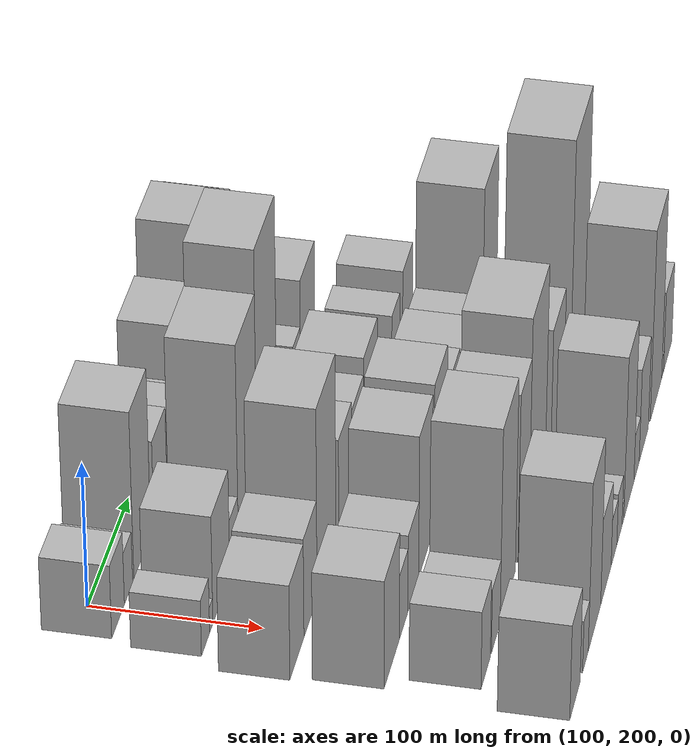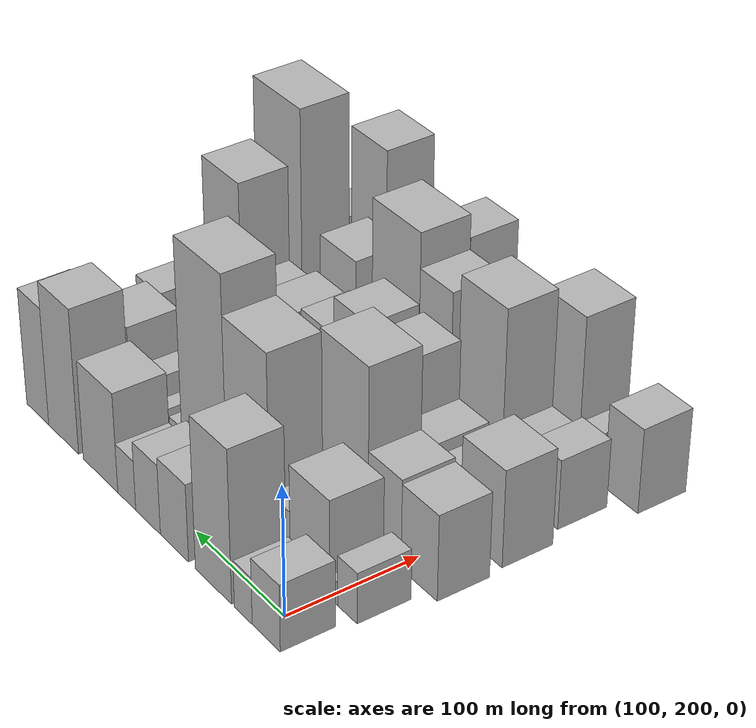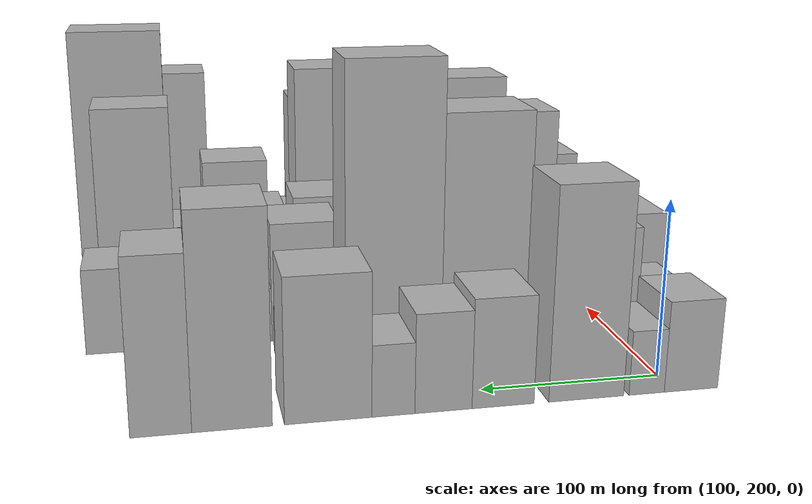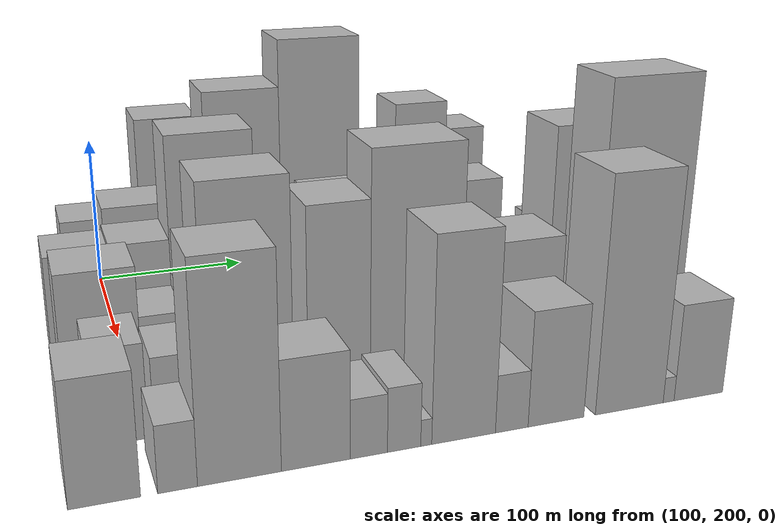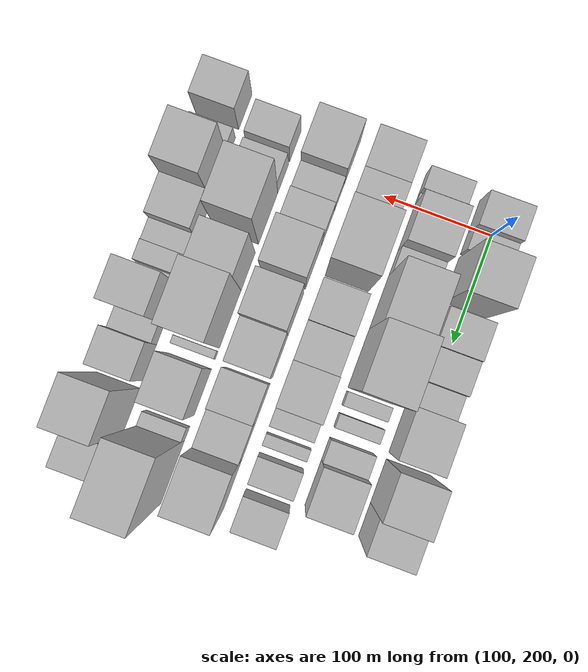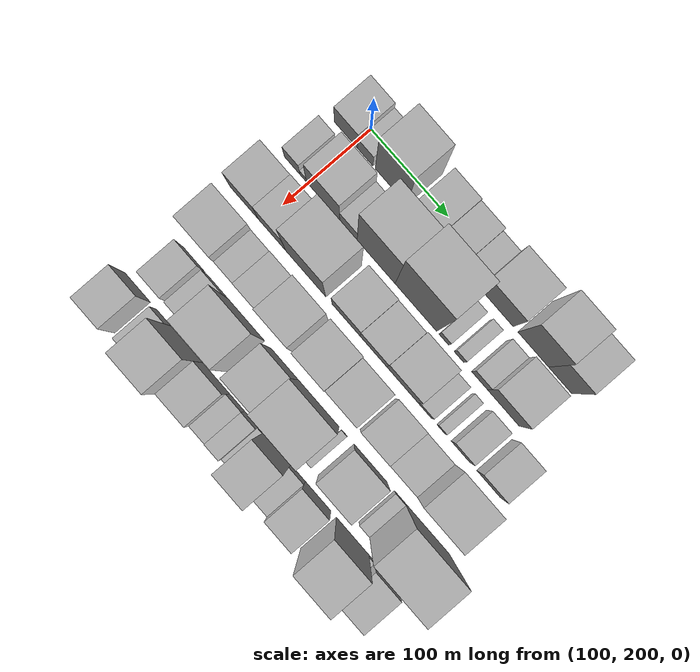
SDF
<sdf version="1.6">
 <world name="default">
  <model name="building_34">
   <static>1</static>
   <pose>100.0000 189.9409 0 0.000000 0.000000 0.000000</pose>
   <link name="link">
    <pose>0 0 25.50 0 0 0</pose>
    <collision name="collision"><geometry><box><size>40.0000 30.4841 51.0000</size></box></geometry></collision>
    <visual name="visual">
     <cast_shadows>0</cast_shadows>
     <geometry><box><size>40.0000 30.4841 51.0000</size></box></geometry>
     <material>
      <script>
       <uri>model://HANNAS_wall/materials/scripts</uri>
       <uri>model://HANNAS_wall/materials/textures</uri>
       <name>vrc/HANNAS_wall</name>
      </script>
     </material>
    </visual>
   </link>
  </model>
  <model name="building_35">
   <static>1</static>
   <pose>100.0000 215.1093 0 0.000000 0.000000 0.000000</pose>
   <link name="link">
    <pose>0 0 18.00 0 0 0</pose>
    <collision name="collision"><geometry><box><size>40.0000 19.8527 36.0000</size></box></geometry></collision>
    <visual name="visual">
     <cast_shadows>0</cast_shadows>
     <geometry><box><size>40.0000 19.8527 36.0000</size></box></geometry>
     <material>
      <script>
       <uri>model://HANNAS_wall/materials/scripts</uri>
       <uri>model://HANNAS_wall/materials/textures</uri>
       <name>vrc/HANNAS_wall</name>
      </script>
     </material>
    </visual>
   </link>
  </model>
  <model name="building_36">
   <static>1</static>
   <pose>100.0000 248.7169 0 0.000000 0.000000 0.000000</pose>
   <link name="link">
    <pose>0 0 58.50 0 0 0</pose>
    <collision name="collision"><geometry><box><size>40.0000 41.3625 117.0000</size></box></geometry></collision>
    <visual name="visual">
     <cast_shadows>0</cast_shadows>
     <geometry><box><size>40.0000 41.3625 117.0000</size></box></geometry>
     <material>
      <script>
       <uri>model://HANNAS_wall/materials/scripts</uri>
       <uri>model://HANNAS_wall/materials/textures</uri>
       <name>vrc/HANNAS_wall</name>
      </script>
     </material>
    </visual>
   </link>
  </model>
  <model name="building_37">
   <static>1</static>
   <pose>100.0000 294.0604 0 0.000000 0.000000 0.000000</pose>
   <link name="link">
    <pose>0 0 30.00 0 0 0</pose>
    <collision name="collision"><geometry><box><size>40.0000 33.3245 60.0000</size></box></geometry></collision>
    <visual name="visual">
     <cast_shadows>0</cast_shadows>
     <geometry><box><size>40.0000 33.3245 60.0000</size></box></geometry>
     <material>
      <script>
       <uri>model://HANNAS_wall/materials/scripts</uri>
       <uri>model://HANNAS_wall/materials/textures</uri>
       <name>vrc/HANNAS_wall</name>
      </script>
     </material>
    </visual>
   </link>
  </model>
  <model name="building_38">
   <static>1</static>
   <pose>100.0000 325.7428 0 0.000000 0.000000 0.000000</pose>
   <link name="link">
    <pose>0 0 27.00 0 0 0</pose>
    <collision name="collision"><geometry><box><size>40.0000 30.0403 54.0000</size></box></geometry></collision>
    <visual name="visual">
     <cast_shadows>0</cast_shadows>
     <geometry><box><size>40.0000 30.0403 54.0000</size></box></geometry>
     <material>
      <script>
       <uri>model://HANNAS_wall/materials/scripts</uri>
       <uri>model://HANNAS_wall/materials/textures</uri>
       <name>vrc/HANNAS_wall</name>
      </script>
     </material>
    </visual>
   </link>
  </model>
  <model name="building_39">
   <static>1</static>
   <pose>100.0000 351.9059 0 0.000000 0.000000 0.000000</pose>
   <link name="link">
    <pose>0 0 19.50 0 0 0</pose>
    <collision name="collision"><geometry><box><size>40.0000 22.2858 39.0000</size></box></geometry></collision>
    <visual name="visual">
     <cast_shadows>0</cast_shadows>
     <geometry><box><size>40.0000 22.2858 39.0000</size></box></geometry>
     <material>
      <script>
       <uri>model://HANNAS_wall/materials/scripts</uri>
       <uri>model://HANNAS_wall/materials/textures</uri>
       <name>vrc/HANNAS_wall</name>
      </script>
     </material>
    </visual>
   </link>
  </model>
  <model name="building_40">
   <static>1</static>
   <pose>100.0000 385.2100 0 0.000000 0.000000 0.000000</pose>
   <link name="link">
    <pose>0 0 39.00 0 0 0</pose>
    <collision name="collision"><geometry><box><size>40.0000 44.3224 78.0000</size></box></geometry></collision>
    <visual name="visual">
     <cast_shadows>0</cast_shadows>
     <geometry><box><size>40.0000 44.3224 78.0000</size></box></geometry>
     <material>
      <script>
       <uri>model://HANNAS_wall/materials/scripts</uri>
       <uri>model://HANNAS_wall/materials/textures</uri>
       <name>vrc/HANNAS_wall</name>
      </script>
     </material>
    </visual>
   </link>
  </model>
  <model name="building_41">
   <static>1</static>
   <pose>100.0000 433.2024 0 0.000000 0.000000 0.000000</pose>
   <link name="link">
    <pose>0 0 57.00 0 0 0</pose>
    <collision name="collision"><geometry><box><size>40.0000 39.6624 114.0000</size></box></geometry></collision>
    <visual name="visual">
     <cast_shadows>0</cast_shadows>
     <geometry><box><size>40.0000 39.6624 114.0000</size></box></geometry>
     <material>
      <script>
       <uri>model://HANNAS_wall/materials/scripts</uri>
       <uri>model://HANNAS_wall/materials/textures</uri>
       <name>vrc/HANNAS_wall</name>
      </script>
     </material>
    </visual>
   </link>
  </model>
  <model name="building_42">
   <static>1</static>
   <pose>100.0000 467.9742 0 0.000000 0.000000 0.000000</pose>
   <link name="link">
    <pose>0 0 46.50 0 0 0</pose>
    <collision name="collision"><geometry><box><size>40.0000 29.8813 93.0000</size></box></geometry></collision>
    <visual name="visual">
     <cast_shadows>0</cast_shadows>
     <geometry><box><size>40.0000 29.8813 93.0000</size></box></geometry>
     <material>
      <script>
       <uri>model://HANNAS_wall/materials/scripts</uri>
       <uri>model://HANNAS_wall/materials/textures</uri>
       <name>vrc/HANNAS_wall</name>
      </script>
     </material>
    </visual>
   </link>
  </model>
  <model name="building_81">
   <static>1</static>
   <pose>152.0000 179.6638 0 0.000000 0.000000 0.000000</pose>
   <link name="link">
    <pose>0 0 19.50 0 0 0</pose>
    <collision name="collision"><geometry><box><size>40.0000 20.5062 39.0000</size></box></geometry></collision>
    <visual name="visual">
     <cast_shadows>0</cast_shadows>
     <geometry><box><size>40.0000 20.5062 39.0000</size></box></geometry>
     <material>
      <script>
       <uri>model://HANNAS_wall/materials/scripts</uri>
       <uri>model://HANNAS_wall/materials/textures</uri>
       <name>vrc/HANNAS_wall</name>
      </script>
     </material>
    </visual>
   </link>
  </model>
  <model name="building_82">
   <static>1</static>
   <pose>152.0000 194.1383 0 0.000000 0.000000 0.000000</pose>
   <link name="link">
    <pose>0 0 9.00 0 0 0</pose>
    <collision name="collision"><geometry><box><size>40.0000 8.4429 18.0000</size></box></geometry></collision>
    <visual name="visual">
     <cast_shadows>0</cast_shadows>
     <geometry><box><size>40.0000 8.4429 18.0000</size></box></geometry>
     <material>
      <script>
       <uri>model://HANNAS_wall/materials/scripts</uri>
       <uri>model://HANNAS_wall/materials/textures</uri>
       <name>vrc/HANNAS_wall</name>
      </script>
     </material>
    </visual>
   </link>
  </model>
  <model name="building_83">
   <static>1</static>
   <pose>152.0000 220.0051 0 0.000000 0.000000 0.000000</pose>
   <link name="link">
    <pose>0 0 37.50 0 0 0</pose>
    <collision name="collision"><geometry><box><size>40.0000 43.2905 75.0000</size></box></geometry></collision>
    <visual name="visual">
     <cast_shadows>0</cast_shadows>
     <geometry><box><size>40.0000 43.2905 75.0000</size></box></geometry>
     <material>
      <script>
       <uri>model://HANNAS_wall/materials/scripts</uri>
       <uri>model://HANNAS_wall/materials/textures</uri>
       <name>vrc/HANNAS_wall</name>
      </script>
     </material>
    </visual>
   </link>
  </model>
  <model name="building_84">
   <static>1</static>
   <pose>152.0000 252.9879 0 0.000000 0.000000 0.000000</pose>
   <link name="link">
    <pose>0 0 19.50 0 0 0</pose>
    <collision name="collision"><geometry><box><size>40.0000 22.6752 39.0000</size></box></geometry></collision>
    <visual name="visual">
     <cast_shadows>0</cast_shadows>
     <geometry><box><size>40.0000 22.6752 39.0000</size></box></geometry>
     <material>
      <script>
       <uri>model://HANNAS_wall/materials/scripts</uri>
       <uri>model://HANNAS_wall/materials/textures</uri>
       <name>vrc/HANNAS_wall</name>
      </script>
     </material>
    </visual>
   </link>
  </model>
  <model name="building_85">
   <static>1</static>
   <pose>152.0000 288.9753 0 0.000000 0.000000 0.000000</pose>
   <link name="link">
    <pose>0 0 72.00 0 0 0</pose>
    <collision name="collision"><geometry><box><size>40.0000 49.2996 144.0000</size></box></geometry></collision>
    <visual name="visual">
     <cast_shadows>0</cast_shadows>
     <geometry><box><size>40.0000 49.2996 144.0000</size></box></geometry>
     <material>
      <script>
       <uri>model://HANNAS_wall/materials/scripts</uri>
       <uri>model://HANNAS_wall/materials/textures</uri>
       <name>vrc/HANNAS_wall</name>
      </script>
     </material>
    </visual>
   </link>
  </model>
  <model name="building_86">
   <static>1</static>
   <pose>152.0000 340.6394 0 0.000000 0.000000 0.000000</pose>
   <link name="link">
    <pose>0 0 87.00 0 0 0</pose>
    <collision name="collision"><geometry><box><size>40.0000 54.0287 174.0000</size></box></geometry></collision>
    <visual name="visual">
     <cast_shadows>0</cast_shadows>
     <geometry><box><size>40.0000 54.0287 174.0000</size></box></geometry>
     <material>
      <script>
       <uri>model://HANNAS_wall/materials/scripts</uri>
       <uri>model://HANNAS_wall/materials/textures</uri>
       <name>vrc/HANNAS_wall</name>
      </script>
     </material>
    </visual>
   </link>
  </model>
  <model name="building_87">
   <static>1</static>
   <pose>152.0000 376.9516 0 0.000000 0.000000 0.000000</pose>
   <link name="link">
    <pose>0 0 13.50 0 0 0</pose>
    <collision name="collision"><geometry><box><size>40.0000 12.5956 27.0000</size></box></geometry></collision>
    <visual name="visual">
     <cast_shadows>0</cast_shadows>
     <geometry><box><size>40.0000 12.5956 27.0000</size></box></geometry>
     <material>
      <script>
       <uri>model://HANNAS_wall/materials/scripts</uri>
       <uri>model://HANNAS_wall/materials/textures</uri>
       <name>vrc/HANNAS_wall</name>
      </script>
     </material>
    </visual>
   </link>
  </model>
  <model name="building_88">
   <static>1</static>
   <pose>152.0000 396.5503 0 0.000000 0.000000 0.000000</pose>
   <link name="link">
    <pose>0 0 13.50 0 0 0</pose>
    <collision name="collision"><geometry><box><size>40.0000 12.6017 27.0000</size></box></geometry></collision>
    <visual name="visual">
     <cast_shadows>0</cast_shadows>
     <geometry><box><size>40.0000 12.6017 27.0000</size></box></geometry>
     <material>
      <script>
       <uri>model://HANNAS_wall/materials/scripts</uri>
       <uri>model://HANNAS_wall/materials/textures</uri>
       <name>vrc/HANNAS_wall</name>
      </script>
     </material>
    </visual>
   </link>
  </model>
  <model name="building_89">
   <static>1</static>
   <pose>152.0000 423.0225 0 0.000000 0.000000 0.000000</pose>
   <link name="link">
    <pose>0 0 18.00 0 0 0</pose>
    <collision name="collision"><geometry><box><size>40.0000 20.3427 36.0000</size></box></geometry></collision>
    <visual name="visual">
     <cast_shadows>0</cast_shadows>
     <geometry><box><size>40.0000 20.3427 36.0000</size></box></geometry>
     <material>
      <script>
       <uri>model://HANNAS_wall/materials/scripts</uri>
       <uri>model://HANNAS_wall/materials/textures</uri>
       <name>vrc/HANNAS_wall</name>
      </script>
     </material>
    </visual>
   </link>
  </model>
  <model name="building_90">
   <static>1</static>
   <pose>152.0000 453.8125 0 0.000000 0.000000 0.000000</pose>
   <link name="link">
    <pose>0 0 34.50 0 0 0</pose>
    <collision name="collision"><geometry><box><size>40.0000 41.2373 69.0000</size></box></geometry></collision>
    <visual name="visual">
     <cast_shadows>0</cast_shadows>
     <geometry><box><size>40.0000 41.2373 69.0000</size></box></geometry>
     <material>
      <script>
       <uri>model://HANNAS_wall/materials/scripts</uri>
       <uri>model://HANNAS_wall/materials/textures</uri>
       <name>vrc/HANNAS_wall</name>
      </script>
     </material>
    </visual>
   </link>
  </model>
  <model name="building_131">
   <static>1</static>
   <pose>204.0000 177.5598 0 0.000000 0.000000 0.000000</pose>
   <link name="link">
    <pose>0 0 33.00 0 0 0</pose>
    <collision name="collision"><geometry><box><size>40.0000 37.4621 66.0000</size></box></geometry></collision>
    <visual name="visual">
     <cast_shadows>0</cast_shadows>
     <geometry><box><size>40.0000 37.4621 66.0000</size></box></geometry>
     <material>
      <script>
       <uri>model://HANNAS_wall/materials/scripts</uri>
       <uri>model://HANNAS_wall/materials/textures</uri>
       <name>vrc/HANNAS_wall</name>
      </script>
     </material>
    </visual>
   </link>
  </model>
  <model name="building_132">
   <static>1</static>
   <pose>204.0000 213.9547 0 0.000000 0.000000 0.000000</pose>
   <link name="link">
    <pose>0 0 34.50 0 0 0</pose>
    <collision name="collision"><geometry><box><size>40.0000 35.3278 69.0000</size></box></geometry></collision>
    <visual name="visual">
     <cast_shadows>0</cast_shadows>
     <geometry><box><size>40.0000 35.3278 69.0000</size></box></geometry>
     <material>
      <script>
       <uri>model://HANNAS_wall/materials/scripts</uri>
       <uri>model://HANNAS_wall/materials/textures</uri>
       <name>vrc/HANNAS_wall</name>
      </script>
     </material>
    </visual>
   </link>
  </model>
  <model name="building_133">
   <static>1</static>
   <pose>204.0000 257.6061 0 0.000000 0.000000 0.000000</pose>
   <link name="link">
    <pose>0 0 66.00 0 0 0</pose>
    <collision name="collision"><geometry><box><size>40.0000 51.9750 132.0000</size></box></geometry></collision>
    <visual name="visual">
     <cast_shadows>0</cast_shadows>
     <geometry><box><size>40.0000 51.9750 132.0000</size></box></geometry>
     <material>
      <script>
       <uri>model://HANNAS_wall/materials/scripts</uri>
       <uri>model://HANNAS_wall/materials/textures</uri>
       <name>vrc/HANNAS_wall</name>
      </script>
     </material>
    </visual>
   </link>
  </model>
  <model name="building_134">
   <static>1</static>
   <pose>204.0000 309.8263 0 0.000000 0.000000 0.000000</pose>
   <link name="link">
    <pose>0 0 33.00 0 0 0</pose>
    <collision name="collision"><geometry><box><size>40.0000 36.4655 66.0000</size></box></geometry></collision>
    <visual name="visual">
     <cast_shadows>0</cast_shadows>
     <geometry><box><size>40.0000 36.4655 66.0000</size></box></geometry>
     <material>
      <script>
       <uri>model://HANNAS_wall/materials/scripts</uri>
       <uri>model://HANNAS_wall/materials/textures</uri>
       <name>vrc/HANNAS_wall</name>
      </script>
     </material>
    </visual>
   </link>
  </model>
  <model name="building_135">
   <static>1</static>
   <pose>204.0000 345.2621 0 0.000000 0.000000 0.000000</pose>
   <link name="link">
    <pose>0 0 30.00 0 0 0</pose>
    <collision name="collision"><geometry><box><size>40.0000 34.4060 60.0000</size></box></geometry></collision>
    <visual name="visual">
     <cast_shadows>0</cast_shadows>
     <geometry><box><size>40.0000 34.4060 60.0000</size></box></geometry>
     <material>
      <script>
       <uri>model://HANNAS_wall/materials/scripts</uri>
       <uri>model://HANNAS_wall/materials/textures</uri>
       <name>vrc/HANNAS_wall</name>
      </script>
     </material>
    </visual>
   </link>
  </model>
  <model name="building_136">
   <static>1</static>
   <pose>204.0000 382.5729 0 0.000000 0.000000 0.000000</pose>
   <link name="link">
    <pose>0 0 36.00 0 0 0</pose>
    <collision name="collision"><geometry><box><size>40.0000 40.2155 72.0000</size></box></geometry></collision>
    <visual name="visual">
     <cast_shadows>0</cast_shadows>
     <geometry><box><size>40.0000 40.2155 72.0000</size></box></geometry>
     <material>
      <script>
       <uri>model://HANNAS_wall/materials/scripts</uri>
       <uri>model://HANNAS_wall/materials/textures</uri>
       <name>vrc/HANNAS_wall</name>
      </script>
     </material>
    </visual>
   </link>
  </model>
  <model name="building_137">
   <static>1</static>
   <pose>204.0000 411.5562 0 0.000000 0.000000 0.000000</pose>
   <link name="link">
    <pose>0 0 16.50 0 0 0</pose>
    <collision name="collision"><geometry><box><size>40.0000 17.7512 33.0000</size></box></geometry></collision>
    <visual name="visual">
     <cast_shadows>0</cast_shadows>
     <geometry><box><size>40.0000 17.7512 33.0000</size></box></geometry>
     <material>
      <script>
       <uri>model://HANNAS_wall/materials/scripts</uri>
       <uri>model://HANNAS_wall/materials/textures</uri>
       <name>vrc/HANNAS_wall</name>
      </script>
     </material>
    </visual>
   </link>
  </model>
  <model name="building_138">
   <static>1</static>
   <pose>204.0000 432.6912 0 0.000000 0.000000 0.000000</pose>
   <link name="link">
    <pose>0 0 12.00 0 0 0</pose>
    <collision name="collision"><geometry><box><size>40.0000 10.5186 24.0000</size></box></geometry></collision>
    <visual name="visual">
     <cast_shadows>0</cast_shadows>
     <geometry><box><size>40.0000 10.5186 24.0000</size></box></geometry>
     <material>
      <script>
       <uri>model://HANNAS_wall/materials/scripts</uri>
       <uri>model://HANNAS_wall/materials/textures</uri>
       <name>vrc/HANNAS_wall</name>
      </script>
     </material>
    </visual>
   </link>
  </model>
  <model name="building_139">
   <static>1</static>
   <pose>204.0000 457.9755 0 0.000000 0.000000 0.000000</pose>
   <link name="link">
    <pose>0 0 21.00 0 0 0</pose>
    <collision name="collision"><geometry><box><size>40.0000 24.0501 42.0000</size></box></geometry></collision>
    <visual name="visual">
     <cast_shadows>0</cast_shadows>
     <geometry><box><size>40.0000 24.0501 42.0000</size></box></geometry>
     <material>
      <script>
       <uri>model://HANNAS_wall/materials/scripts</uri>
       <uri>model://HANNAS_wall/materials/textures</uri>
       <name>vrc/HANNAS_wall</name>
      </script>
     </material>
    </visual>
   </link>
  </model>
  <model name="building_140">
   <static>1</static>
   <pose>204.0000 494.2573 0 0.000000 0.000000 0.000000</pose>
   <link name="link">
    <pose>0 0 25.50 0 0 0</pose>
    <collision name="collision"><geometry><box><size>40.0000 30.5135 51.0000</size></box></geometry></collision>
    <visual name="visual">
     <cast_shadows>0</cast_shadows>
     <geometry><box><size>40.0000 30.5135 51.0000</size></box></geometry>
     <material>
      <script>
       <uri>model://HANNAS_wall/materials/scripts</uri>
       <uri>model://HANNAS_wall/materials/textures</uri>
       <name>vrc/HANNAS_wall</name>
      </script>
     </material>
    </visual>
   </link>
  </model>
  <model name="building_177">
   <static>1</static>
   <pose>256.0000 183.3352 0 0.000000 0.000000 0.000000</pose>
   <link name="link">
    <pose>0 0 37.50 0 0 0</pose>
    <collision name="collision"><geometry><box><size>40.0000 43.2467 75.0000</size></box></geometry></collision>
    <visual name="visual">
     <cast_shadows>0</cast_shadows>
     <geometry><box><size>40.0000 43.2467 75.0000</size></box></geometry>
     <material>
      <script>
       <uri>model://HANNAS_wall/materials/scripts</uri>
       <uri>model://HANNAS_wall/materials/textures</uri>
       <name>vrc/HANNAS_wall</name>
      </script>
     </material>
    </visual>
   </link>
  </model>
  <model name="building_178">
   <static>1</static>
   <pose>256.0000 217.2624 0 0.000000 0.000000 0.000000</pose>
   <link name="link">
    <pose>0 0 22.50 0 0 0</pose>
    <collision name="collision"><geometry><box><size>40.0000 24.6078 45.0000</size></box></geometry></collision>
    <visual name="visual">
     <cast_shadows>0</cast_shadows>
     <geometry><box><size>40.0000 24.6078 45.0000</size></box></geometry>
     <material>
      <script>
       <uri>model://HANNAS_wall/materials/scripts</uri>
       <uri>model://HANNAS_wall/materials/textures</uri>
       <name>vrc/HANNAS_wall</name>
      </script>
     </material>
    </visual>
   </link>
  </model>
  <model name="building_179">
   <static>1</static>
   <pose>256.0000 245.3063 0 0.000000 0.000000 0.000000</pose>
   <link name="link">
    <pose>0 0 27.00 0 0 0</pose>
    <collision name="collision"><geometry><box><size>40.0000 31.4799 54.0000</size></box></geometry></collision>
    <visual name="visual">
     <cast_shadows>0</cast_shadows>
     <geometry><box><size>40.0000 31.4799 54.0000</size></box></geometry>
     <material>
      <script>
       <uri>model://HANNAS_wall/materials/scripts</uri>
       <uri>model://HANNAS_wall/materials/textures</uri>
       <name>vrc/HANNAS_wall</name>
      </script>
     </material>
    </visual>
   </link>
  </model>
  <model name="building_180">
   <static>1</static>
   <pose>256.0000 280.8353 0 0.000000 0.000000 0.000000</pose>
   <link name="link">
    <pose>0 0 49.50 0 0 0</pose>
    <collision name="collision"><geometry><box><size>40.0000 39.5781 99.0000</size></box></geometry></collision>
    <visual name="visual">
     <cast_shadows>0</cast_shadows>
     <geometry><box><size>40.0000 39.5781 99.0000</size></box></geometry>
     <material>
      <script>
       <uri>model://HANNAS_wall/materials/scripts</uri>
       <uri>model://HANNAS_wall/materials/textures</uri>
       <name>vrc/HANNAS_wall</name>
      </script>
     </material>
    </visual>
   </link>
  </model>
  <model name="building_181">
   <static>1</static>
   <pose>256.0000 324.9359 0 0.000000 0.000000 0.000000</pose>
   <link name="link">
    <pose>0 0 51.00 0 0 0</pose>
    <collision name="collision"><geometry><box><size>40.0000 38.6232 102.0000</size></box></geometry></collision>
    <visual name="visual">
     <cast_shadows>0</cast_shadows>
     <geometry><box><size>40.0000 38.6232 102.0000</size></box></geometry>
     <material>
      <script>
       <uri>model://HANNAS_wall/materials/scripts</uri>
       <uri>model://HANNAS_wall/materials/textures</uri>
       <name>vrc/HANNAS_wall</name>
      </script>
     </material>
    </visual>
   </link>
  </model>
  <model name="building_182">
   <static>1</static>
   <pose>256.0000 363.5207 0 0.000000 0.000000 0.000000</pose>
   <link name="link">
    <pose>0 0 36.00 0 0 0</pose>
    <collision name="collision"><geometry><box><size>40.0000 38.5465 72.0000</size></box></geometry></collision>
    <visual name="visual">
     <cast_shadows>0</cast_shadows>
     <geometry><box><size>40.0000 38.5465 72.0000</size></box></geometry>
     <material>
      <script>
       <uri>model://HANNAS_wall/materials/scripts</uri>
       <uri>model://HANNAS_wall/materials/textures</uri>
       <name>vrc/HANNAS_wall</name>
      </script>
     </material>
    </visual>
   </link>
  </model>
  <model name="building_183">
   <static>1</static>
   <pose>256.0000 405.4651 0 0.000000 0.000000 0.000000</pose>
   <link name="link">
    <pose>0 0 33.00 0 0 0</pose>
    <collision name="collision"><geometry><box><size>40.0000 35.3423 66.0000</size></box></geometry></collision>
    <visual name="visual">
     <cast_shadows>0</cast_shadows>
     <geometry><box><size>40.0000 35.3423 66.0000</size></box></geometry>
     <material>
      <script>
       <uri>model://HANNAS_wall/materials/scripts</uri>
       <uri>model://HANNAS_wall/materials/textures</uri>
       <name>vrc/HANNAS_wall</name>
      </script>
     </material>
    </visual>
   </link>
  </model>
  <model name="building_184">
   <static>1</static>
   <pose>256.0000 439.8909 0 0.000000 0.000000 0.000000</pose>
   <link name="link">
    <pose>0 0 28.50 0 0 0</pose>
    <collision name="collision"><geometry><box><size>40.0000 33.5093 57.0000</size></box></geometry></collision>
    <visual name="visual">
     <cast_shadows>0</cast_shadows>
     <geometry><box><size>40.0000 33.5093 57.0000</size></box></geometry>
     <material>
      <script>
       <uri>model://HANNAS_wall/materials/scripts</uri>
       <uri>model://HANNAS_wall/materials/textures</uri>
       <name>vrc/HANNAS_wall</name>
      </script>
     </material>
    </visual>
   </link>
  </model>
  <model name="building_185">
   <static>1</static>
   <pose>256.0000 479.4645 0 0.000000 0.000000 0.000000</pose>
   <link name="link">
    <pose>0 0 66.00 0 0 0</pose>
    <collision name="collision"><geometry><box><size>40.0000 45.6380 132.0000</size></box></geometry></collision>
    <visual name="visual">
     <cast_shadows>0</cast_shadows>
     <geometry><box><size>40.0000 45.6380 132.0000</size></box></geometry>
     <material>
      <script>
       <uri>model://HANNAS_wall/materials/scripts</uri>
       <uri>model://HANNAS_wall/materials/textures</uri>
       <name>vrc/HANNAS_wall</name>
      </script>
     </material>
    </visual>
   </link>
  </model>
  <model name="building_232">
   <static>1</static>
   <pose>308.0000 186.0293 0 0.000000 0.000000 0.000000</pose>
   <link name="link">
    <pose>0 0 27.00 0 0 0</pose>
    <collision name="collision"><geometry><box><size>40.0000 28.4642 54.0000</size></box></geometry></collision>
    <visual name="visual">
     <cast_shadows>0</cast_shadows>
     <geometry><box><size>40.0000 28.4642 54.0000</size></box></geometry>
     <material>
      <script>
       <uri>model://HANNAS_wall/materials/scripts</uri>
       <uri>model://HANNAS_wall/materials/textures</uri>
       <name>vrc/HANNAS_wall</name>
      </script>
     </material>
    </visual>
   </link>
  </model>
  <model name="building_233">
   <static>1</static>
   <pose>308.0000 216.6786 0 0.000000 0.000000 0.000000</pose>
   <link name="link">
    <pose>0 0 22.50 0 0 0</pose>
    <collision name="collision"><geometry><box><size>40.0000 26.8344 45.0000</size></box></geometry></collision>
    <visual name="visual">
     <cast_shadows>0</cast_shadows>
     <geometry><box><size>40.0000 26.8344 45.0000</size></box></geometry>
     <material>
      <script>
       <uri>model://HANNAS_wall/materials/scripts</uri>
       <uri>model://HANNAS_wall/materials/textures</uri>
       <name>vrc/HANNAS_wall</name>
      </script>
     </material>
    </visual>
   </link>
  </model>
  <model name="building_234">
   <static>1</static>
   <pose>308.0000 253.9939 0 0.000000 0.000000 0.000000</pose>
   <link name="link">
    <pose>0 0 67.50 0 0 0</pose>
    <collision name="collision"><geometry><box><size>40.0000 47.7962 135.0000</size></box></geometry></collision>
    <visual name="visual">
     <cast_shadows>0</cast_shadows>
     <geometry><box><size>40.0000 47.7962 135.0000</size></box></geometry>
     <material>
      <script>
       <uri>model://HANNAS_wall/materials/scripts</uri>
       <uri>model://HANNAS_wall/materials/textures</uri>
       <name>vrc/HANNAS_wall</name>
      </script>
     </material>
    </visual>
   </link>
  </model>
  <model name="building_235">
   <static>1</static>
   <pose>308.0000 303.5064 0 0.000000 0.000000 0.000000</pose>
   <link name="link">
    <pose>0 0 58.50 0 0 0</pose>
    <collision name="collision"><geometry><box><size>40.0000 35.2289 117.0000</size></box></geometry></collision>
    <visual name="visual">
     <cast_shadows>0</cast_shadows>
     <geometry><box><size>40.0000 35.2289 117.0000</size></box></geometry>
     <material>
      <script>
       <uri>model://HANNAS_wall/materials/scripts</uri>
       <uri>model://HANNAS_wall/materials/textures</uri>
       <name>vrc/HANNAS_wall</name>
      </script>
     </material>
    </visual>
   </link>
  </model>
  <model name="building_236">
   <static>1</static>
   <pose>308.0000 347.8378 0 0.000000 0.000000 0.000000</pose>
   <link name="link">
    <pose>0 0 72.00 0 0 0</pose>
    <collision name="collision"><geometry><box><size>40.0000 53.4338 144.0000</size></box></geometry></collision>
    <visual name="visual">
     <cast_shadows>0</cast_shadows>
     <geometry><box><size>40.0000 53.4338 144.0000</size></box></geometry>
     <material>
      <script>
       <uri>model://HANNAS_wall/materials/scripts</uri>
       <uri>model://HANNAS_wall/materials/textures</uri>
       <name>vrc/HANNAS_wall</name>
      </script>
     </material>
    </visual>
   </link>
  </model>
  <model name="building_237">
   <static>1</static>
   <pose>308.0000 381.1796 0 0.000000 0.000000 0.000000</pose>
   <link name="link">
    <pose>0 0 7.50 0 0 0</pose>
    <collision name="collision"><geometry><box><size>40.0000 7.2499 15.0000</size></box></geometry></collision>
    <visual name="visual">
     <cast_shadows>0</cast_shadows>
     <geometry><box><size>40.0000 7.2499 15.0000</size></box></geometry>
     <material>
      <script>
       <uri>model://HANNAS_wall/materials/scripts</uri>
       <uri>model://HANNAS_wall/materials/textures</uri>
       <name>vrc/HANNAS_wall</name>
      </script>
     </material>
    </visual>
   </link>
  </model>
  <model name="building_238">
   <static>1</static>
   <pose>308.0000 415.0241 0 0.000000 0.000000 0.000000</pose>
   <link name="link">
    <pose>0 0 42.00 0 0 0</pose>
    <collision name="collision"><geometry><box><size>40.0000 42.4391 84.0000</size></box></geometry></collision>
    <visual name="visual">
     <cast_shadows>0</cast_shadows>
     <geometry><box><size>40.0000 42.4391 84.0000</size></box></geometry>
     <material>
      <script>
       <uri>model://HANNAS_wall/materials/scripts</uri>
       <uri>model://HANNAS_wall/materials/textures</uri>
       <name>vrc/HANNAS_wall</name>
      </script>
     </material>
    </visual>
   </link>
  </model>
  <model name="building_239">
   <static>1</static>
   <pose>308.0000 452.6810 0 0.000000 0.000000 0.000000</pose>
   <link name="link">
    <pose>0 0 13.50 0 0 0</pose>
    <collision name="collision"><geometry><box><size>40.0000 12.8746 27.0000</size></box></geometry></collision>
    <visual name="visual">
     <cast_shadows>0</cast_shadows>
     <geometry><box><size>40.0000 12.8746 27.0000</size></box></geometry>
     <material>
      <script>
       <uri>model://HANNAS_wall/materials/scripts</uri>
       <uri>model://HANNAS_wall/materials/textures</uri>
       <name>vrc/HANNAS_wall</name>
      </script>
     </material>
    </visual>
   </link>
  </model>
  <model name="building_240">
   <static>1</static>
   <pose>308.0000 487.8612 0 0.000000 0.000000 0.000000</pose>
   <link name="link">
    <pose>0 0 85.50 0 0 0</pose>
    <collision name="collision"><geometry><box><size>40.0000 57.4859 171.0000</size></box></geometry></collision>
    <visual name="visual">
     <cast_shadows>0</cast_shadows>
     <geometry><box><size>40.0000 57.4859 171.0000</size></box></geometry>
     <material>
      <script>
       <uri>model://HANNAS_wall/materials/scripts</uri>
       <uri>model://HANNAS_wall/materials/textures</uri>
       <name>vrc/HANNAS_wall</name>
      </script>
     </material>
    </visual>
   </link>
  </model>
  <model name="building_278">
   <static>1</static>
   <pose>360.0000 172.0790 0 0.000000 0.000000 0.000000</pose>
   <link name="link">
    <pose>0 0 33.00 0 0 0</pose>
    <collision name="collision"><geometry><box><size>40.0000 33.3811 66.0000</size></box></geometry></collision>
    <visual name="visual">
     <cast_shadows>0</cast_shadows>
     <geometry><box><size>40.0000 33.3811 66.0000</size></box></geometry>
     <material>
      <script>
       <uri>model://HANNAS_wall/materials/scripts</uri>
       <uri>model://HANNAS_wall/materials/textures</uri>
       <name>vrc/HANNAS_wall</name>
      </script>
     </material>
    </visual>
   </link>
  </model>
  <model name="building_279">
   <static>1</static>
   <pose>360.0000 206.2129 0 0.000000 0.000000 0.000000</pose>
   <link name="link">
    <pose>0 0 18.00 0 0 0</pose>
    <collision name="collision"><geometry><box><size>40.0000 18.8867 36.0000</size></box></geometry></collision>
    <visual name="visual">
     <cast_shadows>0</cast_shadows>
     <geometry><box><size>40.0000 18.8867 36.0000</size></box></geometry>
     <material>
      <script>
       <uri>model://HANNAS_wall/materials/scripts</uri>
       <uri>model://HANNAS_wall/materials/textures</uri>
       <name>vrc/HANNAS_wall</name>
      </script>
     </material>
    </visual>
   </link>
  </model>
  <model name="building_280">
   <static>1</static>
   <pose>360.0000 236.2873 0 0.000000 0.000000 0.000000</pose>
   <link name="link">
    <pose>0 0 58.50 0 0 0</pose>
    <collision name="collision"><geometry><box><size>40.0000 41.2621 117.0000</size></box></geometry></collision>
    <visual name="visual">
     <cast_shadows>0</cast_shadows>
     <geometry><box><size>40.0000 41.2621 117.0000</size></box></geometry>
     <material>
      <script>
       <uri>model://HANNAS_wall/materials/scripts</uri>
       <uri>model://HANNAS_wall/materials/textures</uri>
       <name>vrc/HANNAS_wall</name>
      </script>
     </material>
    </visual>
   </link>
  </model>
  <model name="building_281">
   <static>1</static>
   <pose>360.0000 274.5885 0 0.000000 0.000000 0.000000</pose>
   <link name="link">
    <pose>0 0 30.00 0 0 0</pose>
    <collision name="collision"><geometry><box><size>40.0000 35.3403 60.0000</size></box></geometry></collision>
    <visual name="visual">
     <cast_shadows>0</cast_shadows>
     <geometry><box><size>40.0000 35.3403 60.0000</size></box></geometry>
     <material>
      <script>
       <uri>model://HANNAS_wall/materials/scripts</uri>
       <uri>model://HANNAS_wall/materials/textures</uri>
       <name>vrc/HANNAS_wall</name>
      </script>
     </material>
    </visual>
   </link>
  </model>
  <model name="building_282">
   <static>1</static>
   <pose>360.0000 302.1170 0 0.000000 0.000000 0.000000</pose>
   <link name="link">
    <pose>0 0 16.50 0 0 0</pose>
    <collision name="collision"><geometry><box><size>40.0000 19.7167 33.0000</size></box></geometry></collision>
    <visual name="visual">
     <cast_shadows>0</cast_shadows>
     <geometry><box><size>40.0000 19.7167 33.0000</size></box></geometry>
     <material>
      <script>
       <uri>model://HANNAS_wall/materials/scripts</uri>
       <uri>model://HANNAS_wall/materials/textures</uri>
       <name>vrc/HANNAS_wall</name>
      </script>
     </material>
    </visual>
   </link>
  </model>
  <model name="building_283">
   <static>1</static>
   <pose>360.0000 320.9958 0 0.000000 0.000000 0.000000</pose>
   <link name="link">
    <pose>0 0 18.00 0 0 0</pose>
    <collision name="collision"><geometry><box><size>40.0000 18.0409 36.0000</size></box></geometry></collision>
    <visual name="visual">
     <cast_shadows>0</cast_shadows>
     <geometry><box><size>40.0000 18.0409 36.0000</size></box></geometry>
     <material>
      <script>
       <uri>model://HANNAS_wall/materials/scripts</uri>
       <uri>model://HANNAS_wall/materials/textures</uri>
       <name>vrc/HANNAS_wall</name>
      </script>
     </material>
    </visual>
   </link>
  </model>
  <model name="building_284">
   <static>1</static>
   <pose>360.0000 333.0290 0 0.000000 0.000000 0.000000</pose>
   <link name="link">
    <pose>0 0 7.50 0 0 0</pose>
    <collision name="collision"><geometry><box><size>40.0000 6.0255 15.0000</size></box></geometry></collision>
    <visual name="visual">
     <cast_shadows>0</cast_shadows>
     <geometry><box><size>40.0000 6.0255 15.0000</size></box></geometry>
     <material>
      <script>
       <uri>model://HANNAS_wall/materials/scripts</uri>
       <uri>model://HANNAS_wall/materials/textures</uri>
       <name>vrc/HANNAS_wall</name>
      </script>
     </material>
    </visual>
   </link>
  </model>
  <model name="building_285">
   <static>1</static>
   <pose>360.0000 353.9153 0 0.000000 0.000000 0.000000</pose>
   <link name="link">
    <pose>0 0 57.00 0 0 0</pose>
    <collision name="collision"><geometry><box><size>40.0000 35.7472 114.0000</size></box></geometry></collision>
    <visual name="visual">
     <cast_shadows>0</cast_shadows>
     <geometry><box><size>40.0000 35.7472 114.0000</size></box></geometry>
     <material>
      <script>
       <uri>model://HANNAS_wall/materials/scripts</uri>
       <uri>model://HANNAS_wall/materials/textures</uri>
       <name>vrc/HANNAS_wall</name>
      </script>
     </material>
    </visual>
   </link>
  </model>
  <model name="building_286">
   <static>1</static>
   <pose>360.0000 381.2198 0 0.000000 0.000000 0.000000</pose>
   <link name="link">
    <pose>0 0 16.50 0 0 0</pose>
    <collision name="collision"><geometry><box><size>40.0000 18.8617 33.0000</size></box></geometry></collision>
    <visual name="visual">
     <cast_shadows>0</cast_shadows>
     <geometry><box><size>40.0000 18.8617 33.0000</size></box></geometry>
     <material>
      <script>
       <uri>model://HANNAS_wall/materials/scripts</uri>
       <uri>model://HANNAS_wall/materials/textures</uri>
       <name>vrc/HANNAS_wall</name>
      </script>
     </material>
    </visual>
   </link>
  </model>
  <model name="building_287">
   <static>1</static>
   <pose>360.0000 407.2044 0 0.000000 0.000000 0.000000</pose>
   <link name="link">
    <pose>0 0 33.00 0 0 0</pose>
    <collision name="collision"><geometry><box><size>40.0000 33.1075 66.0000</size></box></geometry></collision>
    <visual name="visual">
     <cast_shadows>0</cast_shadows>
     <geometry><box><size>40.0000 33.1075 66.0000</size></box></geometry>
     <material>
      <script>
       <uri>model://HANNAS_wall/materials/scripts</uri>
       <uri>model://HANNAS_wall/materials/textures</uri>
       <name>vrc/HANNAS_wall</name>
      </script>
     </material>
    </visual>
   </link>
  </model>
  <model name="building_288">
   <static>1</static>
   <pose>360.0000 451.8515 0 0.000000 0.000000 0.000000</pose>
   <link name="link">
    <pose>0 0 67.50 0 0 0</pose>
    <collision name="collision"><geometry><box><size>40.0000 42.1868 135.0000</size></box></geometry></collision>
    <visual name="visual">
     <cast_shadows>0</cast_shadows>
     <geometry><box><size>40.0000 42.1868 135.0000</size></box></geometry>
     <material>
      <script>
       <uri>model://HANNAS_wall/materials/scripts</uri>
       <uri>model://HANNAS_wall/materials/textures</uri>
       <name>vrc/HANNAS_wall</name>
      </script>
     </material>
    </visual>
   </link>
  </model>
  <model name="building_289">
   <static>1</static>
   <pose>360.0000 476.4226 0 0.000000 0.000000 0.000000</pose>
   <link name="link">
    <pose>0 0 7.50 0 0 0</pose>
    <collision name="collision"><geometry><box><size>40.0000 6.9554 15.0000</size></box></geometry></collision>
    <visual name="visual">
     <cast_shadows>0</cast_shadows>
     <geometry><box><size>40.0000 6.9554 15.0000</size></box></geometry>
     <material>
      <script>
       <uri>model://HANNAS_wall/materials/scripts</uri>
       <uri>model://HANNAS_wall/materials/textures</uri>
       <name>vrc/HANNAS_wall</name>
      </script>
     </material>
    </visual>
   </link>
  </model>
  <model name="building_290">
   <static>1</static>
   <pose>360.0000 495.6550 0 0.000000 0.000000 0.000000</pose>
   <link name="link">
    <pose>0 0 28.50 0 0 0</pose>
    <collision name="collision"><geometry><box><size>40.0000 31.5093 57.0000</size></box></geometry></collision>
    <visual name="visual">
     <cast_shadows>0</cast_shadows>
     <geometry><box><size>40.0000 31.5093 57.0000</size></box></geometry>
     <material>
      <script>
       <uri>model://HANNAS_wall/materials/scripts</uri>
       <uri>model://HANNAS_wall/materials/textures</uri>
       <name>vrc/HANNAS_wall</name>
      </script>
     </material>
    </visual>
   </link>
  </model>
 </world>
</sdf>
